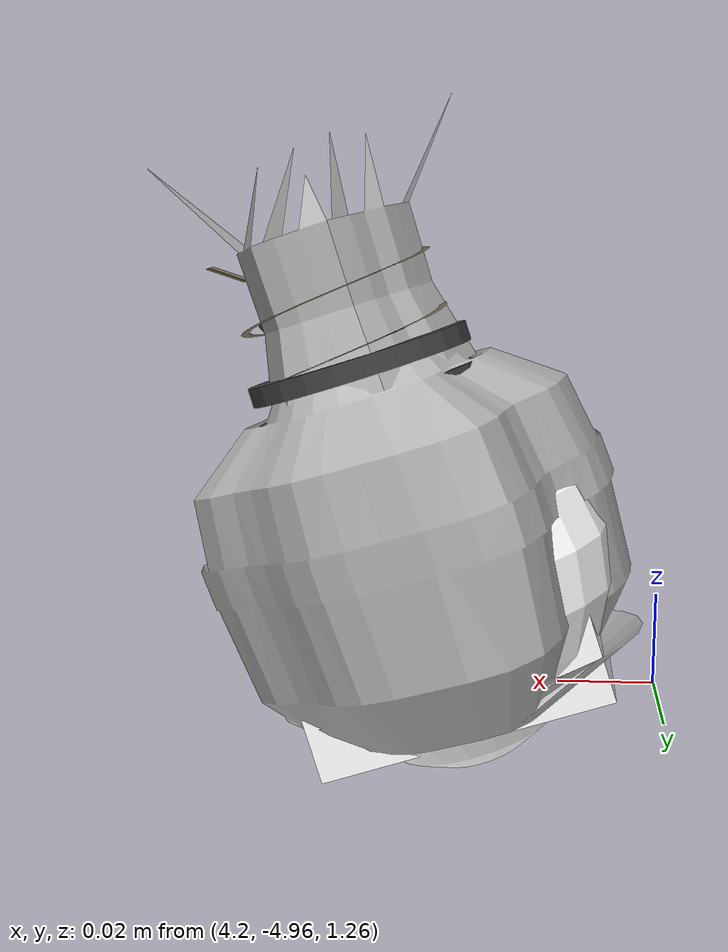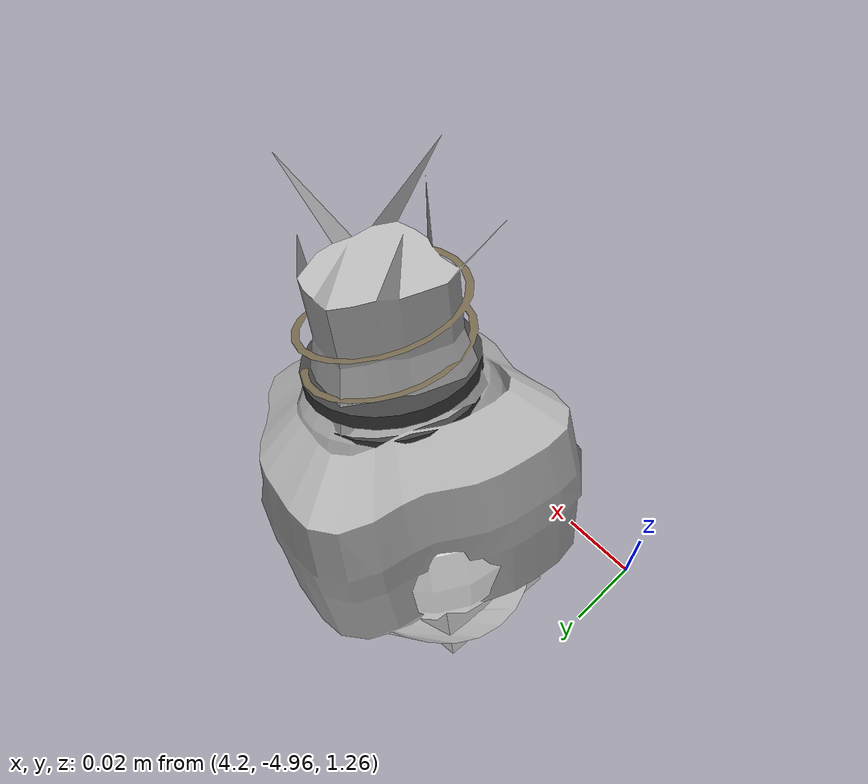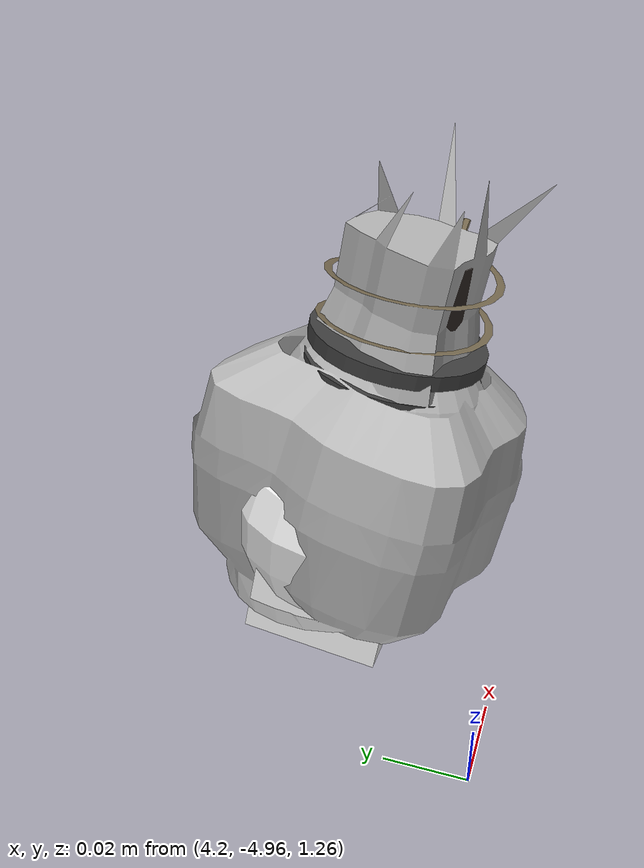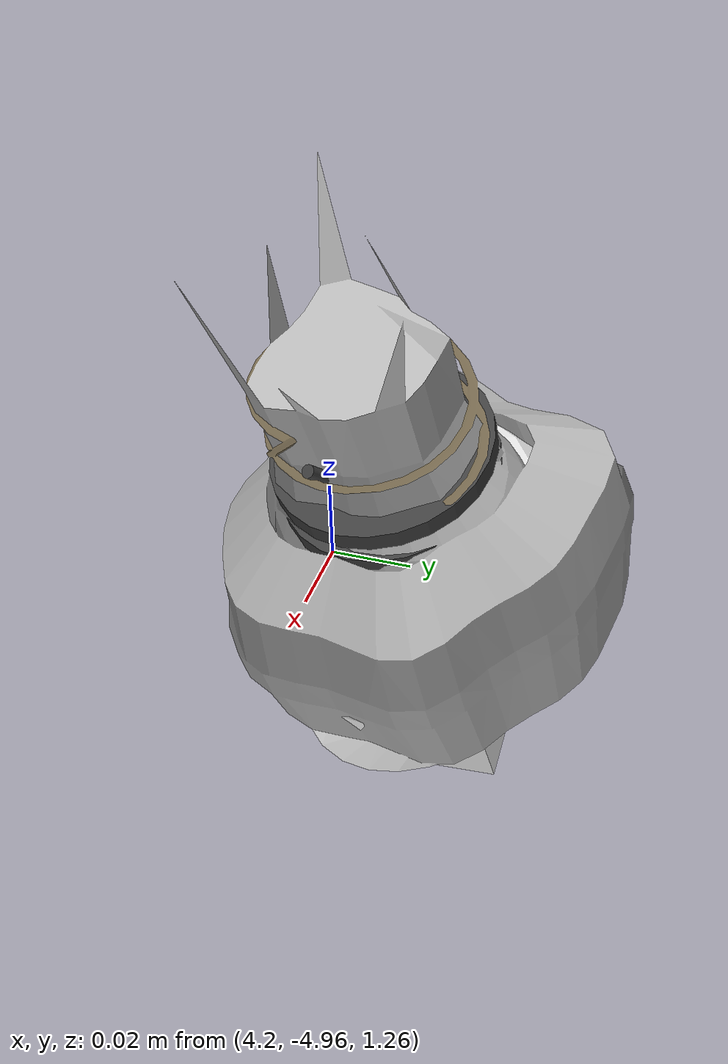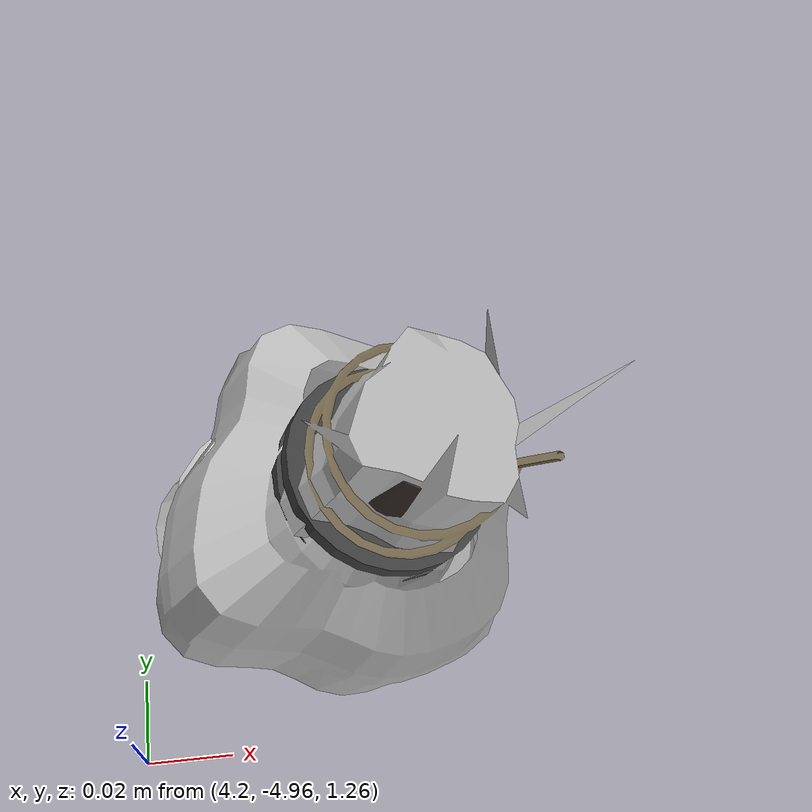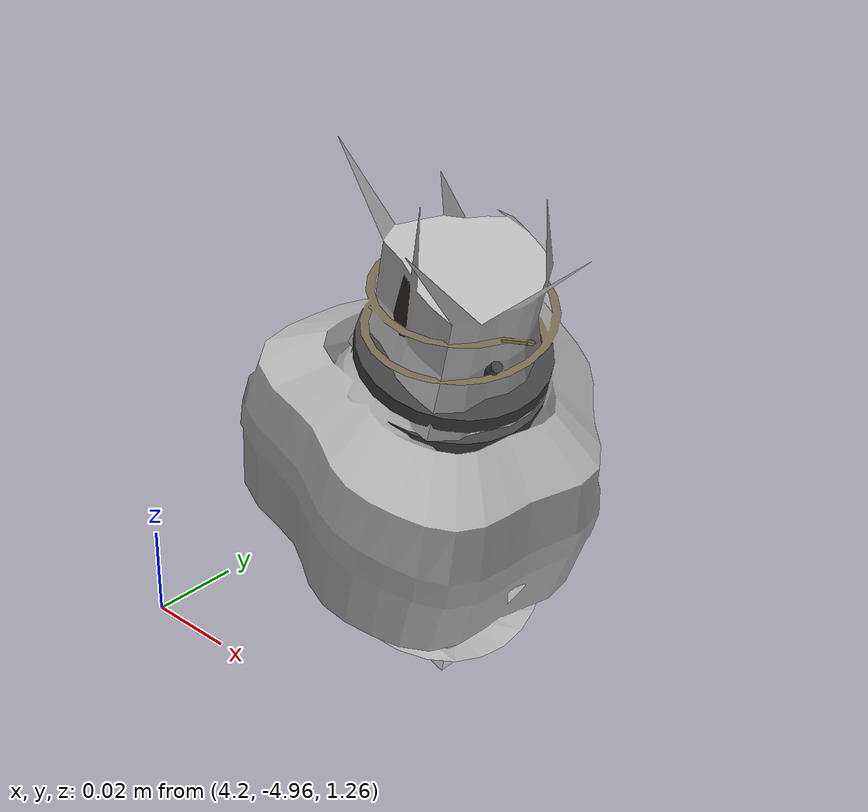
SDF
<sdf version="1.11">
 <world name="peach_orchard">
  <model name="ground">
   <static>true</static>
   <link name="link">
    <visual name="soil">
     <geometry><plane><normal>0 0 1</normal><size>32 22</size></plane></geometry>
     <material>
      <ambient>1 1 1 1</ambient>
      <diffuse>1 1 1 1</diffuse>
      <specular>0.1 0.1 0.1 1</specular>
      <pbr>
       <metal>
        <albedo_map>textures/soil_albedo.png</albedo_map>
        <normal_map type="tangent">textures/soil_normal.png</normal_map>
        <roughness>0.95</roughness>
        <metalness>0</metalness>
       </metal>
      </pbr>
     </material>
    </visual>
    <collision name="c_soil">
     <geometry><plane><normal>0 0 1</normal><size>32 22</size></plane></geometry>
    </collision>
   </link>
  </model>
  <model name="peach_tree_r3_t1_06">
   <pose>4.23747 -4.91848 1.27 0 0.33683 -0.370208</pose>
   <static>true</static>
   <link name="bag">
    <visual name="bag_mesh">
     <pose>0 0 0.0468696 0 0 -0</pose>
     <geometry>
      <mesh><uri>model://peach_sim/meshes/bagged_peach.glb</uri><scale>0.92026 1.04805 1.06522</scale></mesh>
     </geometry>
    </visual>
    <visual name="body">
     <pose>0 0 0.0288696 0 0 0</pose>
     <geometry><ellipsoid><radii>0.0345098 0.0272493 0.0311792</radii></ellipsoid></geometry>
     <material>
      <ambient>1 1 1 1</ambient>
      <diffuse>1 1 1 1</diffuse>
      <specular>0.1 0.1 0.1 1</specular>
      <pbr>
       <metal>
        <albedo_map>textures/paper_bag_albedo.png</albedo_map>
        <normal_map type="tangent">textures/paper_bag_normal.png</normal_map>
        <roughness>0.72</roughness>
        <metalness>0</metalness>
       </metal>
      </pbr>
     </material>
    </visual>
    <visual name="bottom_fold">
     <pose>0 0 0.012 0 0 0.35</pose>
     <geometry><box><size>0.0534901 0.0313367 0.022</size></box></geometry>
     <material>
      <ambient>1 1 1 1</ambient>
      <diffuse>1 1 1 1</diffuse>
      <specular>0.1 0.1 0.1 1</specular>
      <pbr>
       <metal>
        <albedo_map>textures/paper_bag_albedo.png</albedo_map>
        <normal_map type="tangent">textures/paper_bag_normal.png</normal_map>
        <roughness>0.8</roughness>
        <metalness>0</metalness>
       </metal>
      </pbr>
     </material>
    </visual>
    <visual name="fruit">
     <pose>0 0 0.0182172 0 0 0</pose>
     <geometry><sphere><radius>0.0251859</radius></sphere></geometry>
     <material>
      <ambient>1 1 1 1</ambient>
      <diffuse>1 1 1 1</diffuse>
      <specular>0.1 0.1 0.1 1</specular>
      <pbr>
       <metal>
        <albedo_map>textures/fruit_skin_albedo.png</albedo_map>
        <normal_map type="tangent">textures/fruit_skin_normal.png</normal_map>
        <roughness>0.55</roughness>
        <metalness>0</metalness>
       </metal>
      </pbr>
     </material>
    </visual>
    <visual name="neck">
     <pose>0 0 0.0667392 0 0 0</pose>
     <geometry><cylinder><radius>0.013</radius><length>0.018</length></cylinder></geometry>
     <material>
      <ambient>1 1 1 1</ambient>
      <diffuse>1 1 1 1</diffuse>
      <specular>0.1 0.1 0.1 1</specular>
      <pbr>
       <metal>
        <albedo_map>textures/paper_bag_albedo.png</albedo_map>
        <normal_map type="tangent">textures/paper_bag_normal.png</normal_map>
        <roughness>0.75</roughness>
        <metalness>0</metalness>
       </metal>
      </pbr>
     </material>
    </visual>
    <visual name="gather">
     <pose>0 0 0.0477392 0 0 0</pose>
     <geometry><cylinder><radius>0.019</radius><length>0.02</length></cylinder></geometry>
     <material>
      <ambient>1 1 1 1</ambient>
      <diffuse>1 1 1 1</diffuse>
      <specular>0.1 0.1 0.1 1</specular>
      <pbr>
       <metal>
        <albedo_map>textures/paper_bag_albedo.png</albedo_map>
        <normal_map type="tangent">textures/paper_bag_normal.png</normal_map>
        <roughness>0.8</roughness>
        <metalness>0</metalness>
       </metal>
      </pbr>
     </material>
    </visual>
    <visual name="inner_paper">
     <pose>0 0 0.0717392 0 0 0</pose>
     <geometry><cylinder><radius>0.01</radius><length>0.008</length></cylinder></geometry>
     <material>
      <ambient>0.180392 0.14902 0.133333 1</ambient>
      <diffuse>0.180392 0.14902 0.133333 1</diffuse>
      <specular>0.1 0.1 0.1 1</specular>
     </material>
    </visual>
    <visual name="wire_0">
     <pose>0 0 0.0617392 0 0 0</pose>
     <geometry><cylinder><radius>0.0205</radius><length>0.0035</length></cylinder></geometry>
     <material>
      <ambient>0.25 0.25 0.25 1</ambient>
      <diffuse>0.25 0.25 0.25 1</diffuse>
      <specular>0.1 0.1 0.1 1</specular>
     </material>
    </visual>
    <visual name="wire_1">
     <pose>0 0 0.0687392 0 0 0</pose>
     <geometry><cylinder><radius>0.0205</radius><length>0.0035</length></cylinder></geometry>
     <material>
      <ambient>0.25 0.25 0.25 1</ambient>
      <diffuse>0.25 0.25 0.25 1</diffuse>
      <specular>0.1 0.1 0.1 1</specular>
     </material>
    </visual>
    <visual name="wire_tail">
     <pose>0.01 0 0.0697392 0 0.521618 0</pose>
     <geometry><cylinder><radius>0.0012</radius><length>0.026</length></cylinder></geometry>
     <material>
      <ambient>0.25 0.25 0.25 1</ambient>
      <diffuse>0.25 0.25 0.25 1</diffuse>
      <specular>0.1 0.1 0.1 1</specular>
     </material>
    </visual>
    <collision name="c_body">
     <pose>0 0 0.0288696 0 0 0</pose>
     <geometry><cylinder><radius>0.0345098</radius><length>0.0577392</length></cylinder></geometry>
    </collision>
   </link>
  </model>
 </world>
</sdf>
